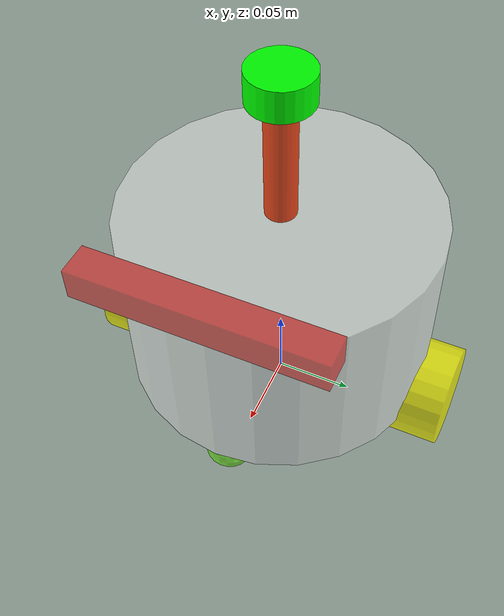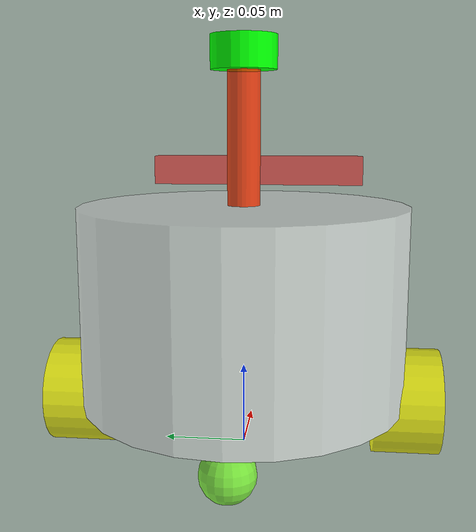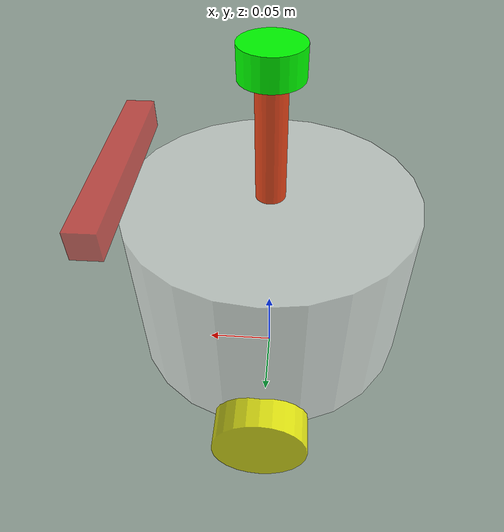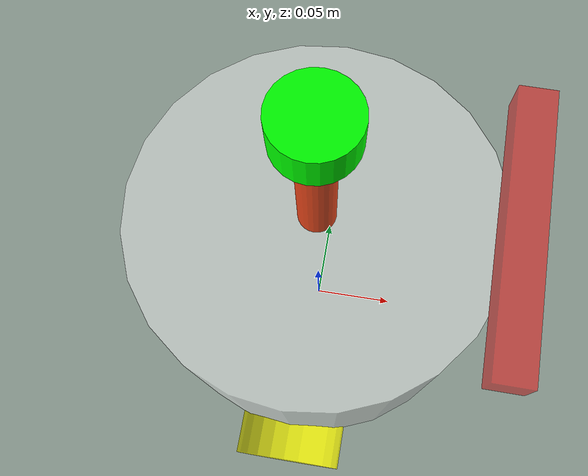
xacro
<?xml version="1.0"?>
<robot xmlns:xacro="http://www.ros.org/wiki/xacro" name="ano_robo">

    <!--find 加包名字-->
    <xacro:include filename="$(find my_robo_description)/URDF/base.urdf.xacro"/>

    <!--传感器组建-->
    <xacro:include filename="$(find my_robo_description)/URDF/sensor/camera.urdf.xacro"/>
    <xacro:include filename="$(find my_robo_description)/URDF/sensor/imu.urdf.xacro"/>
    <xacro:include filename="$(find my_robo_description)/URDF/sensor/lidar.urdf.xacro"/>
    <!--执行部分  2个轮子 2个万向轮-->
    <xacro:include filename="$(find my_robo_description)/URDF/body_/wheel.urdf.xacro"/>
    <xacro:include filename="$(find my_robo_description)/URDF/body_/wheel_wangxianglun.urdf.xacro"/>
    <!--插件-->
    <xacro:include filename="$(find my_robo_description)/URDF/plugins/gazebo_control_plugin.xacro"/>
    <xacro:include filename="$(find my_robo_description)/URDF/plugins/gazebo_sensor_plugin.xacro"/>
    <xacro:include filename="$(find my_robo_description)/URDF/ano_robo_gazebo_ros2_cotrol.xacro"/>

    <xacro:base_xacro length="0.12" radius="0.1"/>
    <!--传感器-->
    <xacro:imu_xacro xyz="0 0 0.02"/>
    <xacro:lidar_xacro xyz="0 0 0.1"/>
    <xacro:camera_xacro xyz="0.1 0 0.075"/>
    <xacro:wheel_xacro wheel_name="left_wheel" xyz="0 0.1 -0.06"/>
    <xacro:wheel_xacro wheel_name="right_wheel" xyz="0 -0.1 -0.06"/>
    <xacro:wheel_wangxianglun_xacro wheel_wangxianglun_name="right_wangxianglun_name" xyz="0.08 0 -0.076"/>
    <xacro:wheel_wangxianglun_xacro wheel_wangxianglun_name="left_wangxianglun_name" xyz="-0.08 0 -0.076"/>

    <xacro:gazebo_sensor_plugin />
    <xacro:ano_robo_gazebo_ros2_cotrol />
</robot>

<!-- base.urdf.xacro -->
<robot xmlns:xacro="http://www.ros.org/wiki/xacro" >
    <xacro:include filename="$(find my_robo_description)/URDF/common_interia.xacro"/>

    <!-- 定义 base_link 宏 -->
    <xacro:macro name="base_xacro" params="length radius">
        <!--机器人的影子-->
        <link name="base_foot_print_yingzi" />

        <!-- 机器人的身体部分 -->
        <link name="base_link">
            <!-- 部件的外观描述 -->
            <visual>
                <!-- 沿着自己几何中心的偏移旋转量 -->
                <origin xyz="0.0 0.0 0.0" rpy="0.0 0.0 0.0"/>
                <!-- 几何形状 -->
                <geometry>
                    <!-- 圆柱体 半径0.1 高度 0.12 -->
                    <cylinder radius="${radius}" length="${length}"/>
                </geometry>
                <!-- 材质 颜色描述 -->
                <material name="bule">
                    <!-- 设置透明为 0.5 -->
                    <color rgba="1.0 1.0 1.0 0.5"/>
                </material>
            </visual>

            <collision>
                 <!-- 沿着自己几何中心的偏移旋转量 -->
                <origin xyz="0.0 0.0 0.0" rpy="0.0 0.0 0.0"/>
                <!-- 几何形状 -->
                <geometry>
                    <!-- 圆柱体 半径0.1 高度 0.12 -->
                    <cylinder radius="${radius}" length="${length}"/>
                </geometry>
                <!-- 材质 颜色描述 -->
                <material name="white">
                    <!-- 设置透明为 0.5 -->
                    <color rgba="1.0 1.0 1.0 0.5"/>
                </material>
            </collision>
            <xacro:cylinear_interial m="1.0" r="${radius}" h="${length}"/>
        </link>
        <joint name="base_joint" type="fixed">
            <origin xyz="0.0 0.0 ${length/2.0+0.032-0.001}" rpy="0.0 0.0 0.0"/>
            <parent link="base_foot_print_yingzi"/>
            <child link="base_link"/>
        </joint>

    </xacro:macro>
</robot>

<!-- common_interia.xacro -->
<robot xmlns:xacro="http://www.ros.org/wiki/xacro" name="my_robo">
    <xacro:macro name="box_interial" params ="m w h d">
        <inertial>
            <mass value="${m}"/>
            <inertia ixx="${(m/12)*(h*h+d*d)}" ixy="0.0" ixz="0.0" iyy="${(m/12)*(w*w+d*d)}" iyz="0.0" izz="${(m/12)*(w*w+h*h)}"/>
        </inertial>
    </xacro:macro>
    <xacro:macro name="cylinear_interial" params ="m r h">
        <inertial>
            <mass value="${m}"/>
            <inertia ixx="${(m/12)*(3*r*r+h*h)}" ixy="0.0" ixz="0.0" iyy="${(m/12)*(3*r*r+h*h)}" iyz="0.0" izz="${(m/2)*(r*r)}"/>
        </inertial>
    </xacro:macro>
    <xacro:macro name="sphere_interial" params ="m r ">
        <inertial>
            <mass value="${m}"/>
            <inertia ixx="${(2/5)*m*(r*r)}" ixy="0.0" ixz="0.0" iyy="${(2/5)*m*(r*r)}" iyz="0.0" izz="${(2/5)*m*(r*r)}"/>

        </inertial>
    </xacro:macro>
</robot>

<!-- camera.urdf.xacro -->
<robot xmlns:xacro="http://www.ros.org/wiki/xacro" >
    <xacro:include filename="$(find my_robo_description)/URDF/common_interia.xacro"/>

    <!-- 定义 imu_link 宏 -->
    <xacro:macro name="camera_xacro" params=" xyz">
        <!-- 机器人IMU 部件 惯性测量单元传感器 -->
        <link name="camera_link">
            <!-- 部件的外观描述 -->
            <visual>
                <!-- 沿着自己几何中心的偏移旋转量 -->
                <origin xyz="0.0 0.0 0.0" rpy="0.0 0.0 0.0"/>
                <!-- 几何形状 -->
                <geometry>
                    <!-- box 自己自动生成的 正方体 -->
                    <box size="0.02 0.15 0.02"/>
                </geometry>
                <!-- 材质 颜色描述 -->
                <material name="red">
                    <!-- 设置透明为 0.5 -->
                    <color rgba="1.0 0.0 0.0 0.5"/>
                </material>
            </visual>
            <collision>
                 <!-- 沿着自己几何中心的偏移旋转量 -->
                <origin xyz="0.0 0.0 0.0" rpy="0.0 0.0 0.0"/>
                <!-- 几何形状 -->
                <geometry>
                    <!-- box 自己自动生成的 正方体 -->
                    <box size="0.02 0.15 0.02"/>
                </geometry>
                <!-- 材质 颜色描述 -->
                <material name="red">
                    <!-- 设置透明为 0.5 -->
                    <color rgba="1.0 0.0 0.0 0.5"/>
                </material>
            </collision>
            <xacro:box_interial m="0.1" w="0.02" h="0.15" d="0.02"/>
        </link>
        <link name="camera_opt_link"></link>

        <joint name="camera_opt_joint" type="fixed">
            <parent link="camera_link"/>
            <child link="camera_opt_link"/>
            <origin xyz="0 0 0" rpy="${-pi/2} 0.0 ${-pi/2}"/>
        </joint>

        <!-- 机器人的关节 用于组合机器人的部件 -->
        <joint name="camera_joint" type="fixed">
            <parent link="base_link"/>
            <child link="camera_link"/>
            <origin xyz="${xyz}" rpy="0.0 0.0 0.0"/>
        </joint>
    </xacro:macro>
</robot>

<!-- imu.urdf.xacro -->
<robot xmlns:xacro="http://www.ros.org/wiki/xacro" >
    <xacro:include filename="$(find my_robo_description)/URDF/common_interia.xacro"/>

    <!-- 定义 imu_link 宏 -->
    <xacro:macro name="imu_xacro" params=" xyz">
        <!-- 机器人IMU 部件 惯性测量单元传感器 -->
        <link name="imu_link">
            <!-- 部件的外观描述 -->
            <visual>
                <!-- 沿着自己几何中心的偏移旋转量 -->
                <origin xyz="0.0 0.0 0.0" rpy="0.0 0.0 0.0"/>
                <!-- 几何形状 -->
                <geometry>
                    <!-- box 自己自动生成的 正方体 -->
                    <box size="0.02 0.02 0.02"/>
                </geometry>
                <!-- 材质 颜色描述 -->
                <material name="red">
                    <!-- 设置透明为 0.5 -->
                    <color rgba="1.0 0.0 0.0 0.5"/>
                </material>
            </visual>
            <!--增加碰撞属性-->
            <collision>
                     <!-- 沿着自己几何中心的偏移旋转量 -->
                <origin xyz="0.0 0.0 0.0" rpy="0.0 0.0 0.0"/>
                <!-- 几何形状 -->
                <geometry>
                    <!-- box 自己自动生成的 正方体 -->
                    <box size="0.02 0.02 0.02"/>
                </geometry>
                <!-- 材质 颜色描述 -->
                <material name="red">
                    <!-- 设置透明为 0.5 -->
                    <color rgba="1.0 0.0 0.0 0.5"/>
                </material>
            </collision>
            <xacro:box_interial m="0.5" w="0.02" h="0.02" d="0.02"/>
        </link>
        <!-- 机器人的关节 用于组合机器人的部件 -->
        <joint name="imu_joint" type="fixed">
            <parent link="base_link"/>
            <child link="imu_link"/>
            <origin xyz="${xyz}" rpy="0.0 0.0 0.0"/>
        </joint>
    </xacro:macro>
</robot>

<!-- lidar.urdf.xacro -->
<robot xmlns:xacro="http://www.ros.org/wiki/xacro" >
    <xacro:include filename="$(find my_robo_description)/URDF/common_interia.xacro"/>

    <xacro:macro name="lidar_xacro" params=" xyz">
        <!-- 雷达支撑杆 -->
        <link name="lidar_insist_link">
            <!-- 部件的外观描述 -->
            <visual>
                <!-- 沿着自己几何中心的偏移旋转量 -->
                <origin xyz="0.0 0.0 0.0" rpy="0.0 0.0 0.0"/>
                <!-- 几何形状 -->
                <geometry>
                    <!-- box 自己自动生成的 正方体 -->
                    <cylinder radius="0.01" length="0.10"/>
                </geometry>
                <!-- 材质 颜色描述 -->
                <material name="green">
                    <!-- 设置透明为 0.5 -->
                    <color rgba="1.0 0.2 0.0 0.8"/>
                </material>
            </visual>
            <!--增加碰撞属性-->
            <collision>
                <!-- 沿着自己几何中心的偏移旋转量 -->
                <origin xyz="0.0 0.0 0.0" rpy="0.0 0.0 0.0"/>
                <!-- 几何形状 -->
                <geometry>
                    <!-- box 自己自动生成的 正方体 -->
                    <cylinder radius="0.01" length="0.10"/>
                </geometry>
                <!-- 材质 颜色描述 -->
                <material name="green">
                    <!-- 设置透明为 0.5 -->
                    <color rgba="0.2 0.2 0.0 0.8"/>
                </material>
            </collision>
            <xacro:cylinear_interial m="0.05" r="0.01" h="0.10"/>

        </link>

        <!-- 雷达 -->
        <link name="lidar__link">
            <!-- 部件的外观描述 -->
            <visual>
                <!-- 沿着自己几何中心的偏移旋转量 -->
                <origin xyz="0.0 0.0 0.0" rpy="0.0 0.0 0.0"/>
                <!-- 几何形状 -->
                <geometry>
                    <!-- box 自己自动生成的 正方体 -->
                    <cylinder radius="0.02" length="0.02"/>
                </geometry>
                <!-- 材质 颜色描述 -->
                <material name="green">
                    <!-- 设置透明为 0.5 -->
                    <color rgba="0.0 1.0 0.0 1.0"/>
                </material>
            </visual>
            <!--增加碰撞属性-->
            <collision>
                <!-- 沿着自己几何中心的偏移旋转量 -->
                <origin xyz="0.0 0.0 0.0" rpy="0.0 0.0 0.0"/>
                <!-- 几何形状 -->
                <geometry>
                    <!-- box 自己自动生成的 正方体 -->
                    <cylinder radius="0.02" length="0.02"/>
                </geometry>
                <!-- 材质 颜色描述 -->
                <material name="green">
                    <!-- 设置透明为 0.5 -->
                    <color rgba="0.0 1.0 0.0 1.0"/>
                </material>
            </collision>
            <xacro:cylinear_interial m="0.10" r="0.02" h="0.02"/>

        </link>

        <!-- 机器人的关节 用于组合机器人的部件 -->
        <joint name="lidar_joint" type="fixed">
            <parent link="lidar_insist_link"/>
            <child link="lidar__link"/>
            <origin xyz="0.0 0.0 0.05" rpy="0.0 0.0 0.0"/>
        </joint>
        <joint name="lidar_insist_joint" type="fixed">
            <parent link="base_link"/>
            <child link="lidar_insist_link"/>
            <origin xyz="${xyz}" rpy="0.0 0.0 0.0"/>
        </joint>

        <gazebo reference ="lidar_insist_link">
            <material>Gazebo/Black</material>
        </gazebo>
         <gazebo reference ="lidar__link">
            <material>Gazebo/Black</material>
        </gazebo>

    </xacro:macro>
</robot>

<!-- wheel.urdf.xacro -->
<robot xmlns:xacro="http://www.ros.org/wiki/xacro" >
    <xacro:include filename="$(find my_robo_description)/URDF/common_interia.xacro"/>

    <!-- 定义 imu_link 宏 -->
    <xacro:macro name="wheel_xacro" params="wheel_name xyz">
        <!-- 机器人IMU 部件 惯性测量单元传感器 -->
        <link name="${wheel_name}_link">
            <!-- 部件的外观描述 -->
            <visual>
                <!-- 沿着自己几何中心的偏移旋转量 -->
                <origin xyz="0.0 0.0 0.0" rpy="1.57079 0.0 0.0"/>
                <!-- 几何形状 -->
                <geometry>
                    <!-- box 自己自动生成的 正方体 -->
                    <cylinder radius="0.032" length="0.04"/>
                </geometry>
                <!-- 材质 颜色描述 -->
                <material name="yellow">
                    <!-- 设置透明为 0.5 -->
                    <color rgba="1.0 1.0 0.0 0.8"/>
                </material>
            </visual>
            <collision>
                <!-- 沿着自己几何中心的偏移旋转量 -->
                <origin xyz="0.0 0.0 0.0" rpy="1.57079 0.0 0.0"/>
                <!-- 几何形状 -->
                <geometry>
                    <!-- box 自己自动生成的 正方体 -->
                    <cylinder radius="0.032" length="0.04"/>
                </geometry>
                <!-- 材质 颜色描述 -->
                <material name="yellow">
                    <!-- 设置透明为 0.5 -->
                    <color rgba="1.0 1.0 0.0 0.8"/>
                </material>
            </collision>
            <xacro:cylinear_interial m="0.05" r="0.032" h="0.04"/>

        </link>
        <!-- 机器人的关节 用于组合机器人的部件 -->
        <joint name="${wheel_name}_joint" type="continuous">
            <parent link="base_link"/>
            <child link="${wheel_name}_link"/>
            <origin xyz="${xyz}" rpy="0.0 0.0 0.0"/>
            <axis xyz="0 1 0"/>
            <hardwareInterface>hardware_interface/EffortJointInterface</hardwareInterface>
        </joint>
        <gazebo reference ="${wheel_name}_joint">
            <mu1 value="20.0"/>
            <mu2 value="20.0"/>
            <kp value="1000000000.0"/>
            <kd value="1.0"/>
            <material>Gazebo/Green</material>
        </gazebo>
    </xacro:macro>
</robot>

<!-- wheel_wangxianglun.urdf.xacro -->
<robot xmlns:xacro="http://www.ros.org/wiki/xacro" >
    <xacro:include filename="$(find my_robo_description)/URDF/common_interia.xacro"/>

    <!-- 定义 imu_link 宏 -->
    <xacro:macro name="wheel_wangxianglun_xacro" params="wheel_wangxianglun_name xyz">
        <!-- 机器人IMU 部件 惯性测量单元传感器 -->
        <link name="${wheel_wangxianglun_name}_link">
            <!-- 部件的外观描述 -->
            <visual>
                <!-- 沿着自己几何中心的偏移旋转量 -->
                <origin xyz="0.0 0.0 0.0" rpy="0.0 0.0 0.0"/>
                <!-- 几何形状 -->
                <geometry>
                    <!-- box 自己自动生成的 正方体 -->
                    <sphere radius="0.016"/>  <!--球体 半径为0.016-->
                </geometry>
                <!-- 材质 颜色描述 -->
                <material name="yellow">
                    <!-- 设置透明为 0.5 -->
                    <color rgba="0.5 1.0 0.2 0.8"/>
                </material>
            </visual>
            <collision>
                <!-- 沿着自己几何中心的偏移旋转量 -->
                <origin xyz="0.0 0.0 0.0" rpy="0.0 0.0 0.0"/>
                <!-- 几何形状 -->
                <geometry>
                    <!-- box 自己自动生成的 正方体 -->
                    <sphere radius="0.016"/>  <!--球体 半径为0.016-->
                </geometry>
                <!-- 材质 颜色描述 -->
                <material name="yellow">
                    <!-- 设置透明为 0.5 -->
                    <color rgba="0.5 1.0 0.2 0.8"/>
                </material>
            </collision>
            <xacro:sphere_interial m="0.05" r="0.016"/>

        </link>
        <!-- 机器人的关节 用于组合机器人的部件 -->
        <joint name="${wheel_wangxianglun_name}_joint" type="fixed">
            <parent link="base_link"/>
            <child link="${wheel_wangxianglun_name}_link"/>
            <origin xyz="${xyz}" rpy="0.0 0.0 0.0"/>
            <axis xyz="0 1 0"/>
        </joint>
         <gazebo reference ="${wheel_wangxianglun_name}_joint">
            <mu1 value="0.0"/>
            <mu2 value="0.0"/>
            <kp value="1000000000.0"/>
            <kd value="1.0"/>
            <material>Gazebo/Green</material>
        </gazebo>

    </xacro:macro>
</robot>
